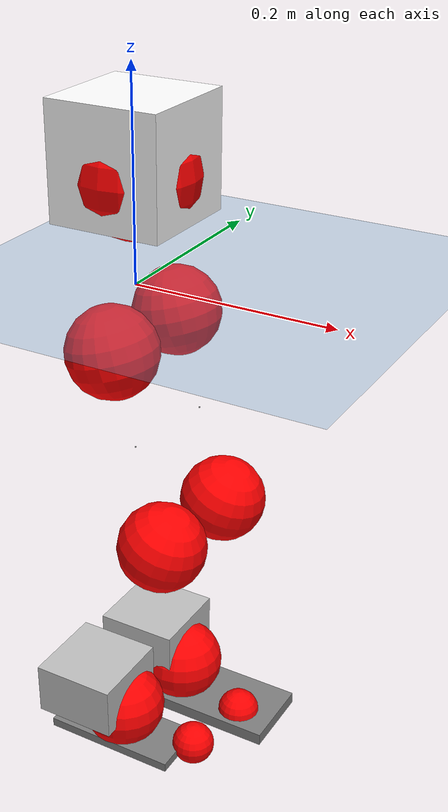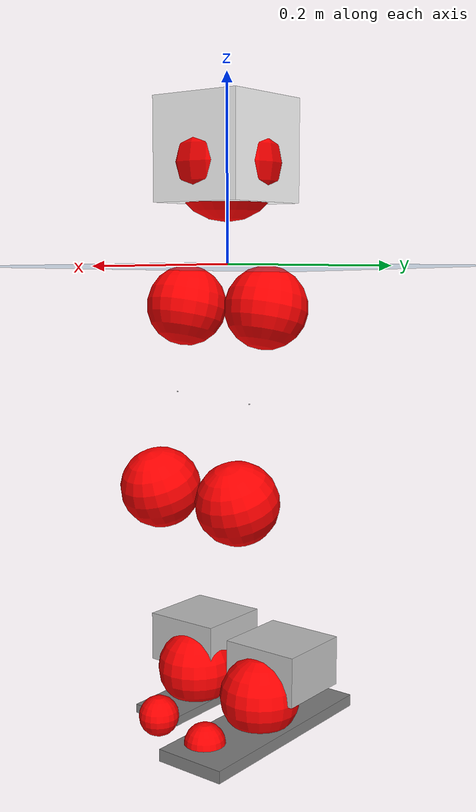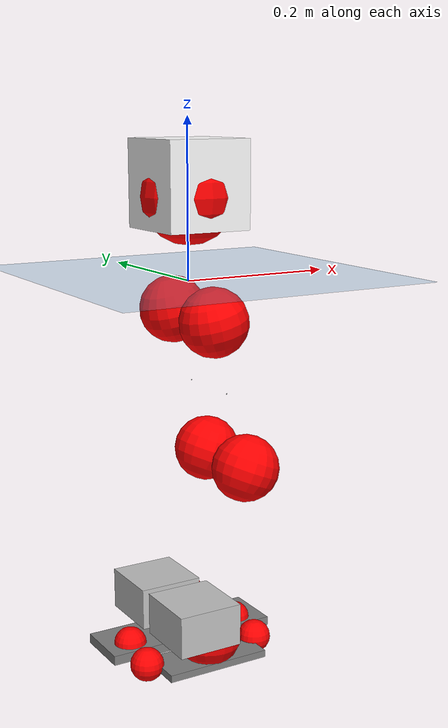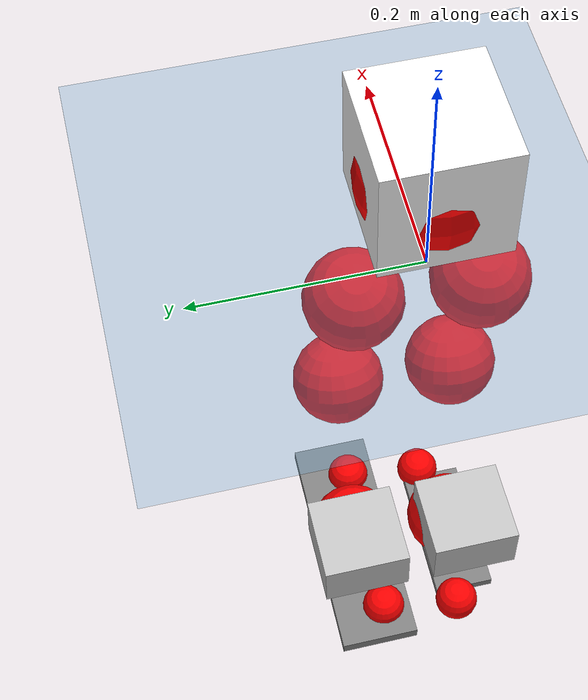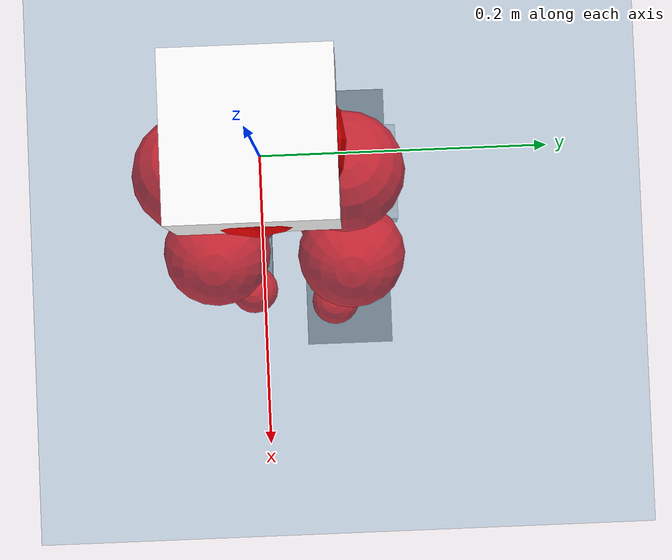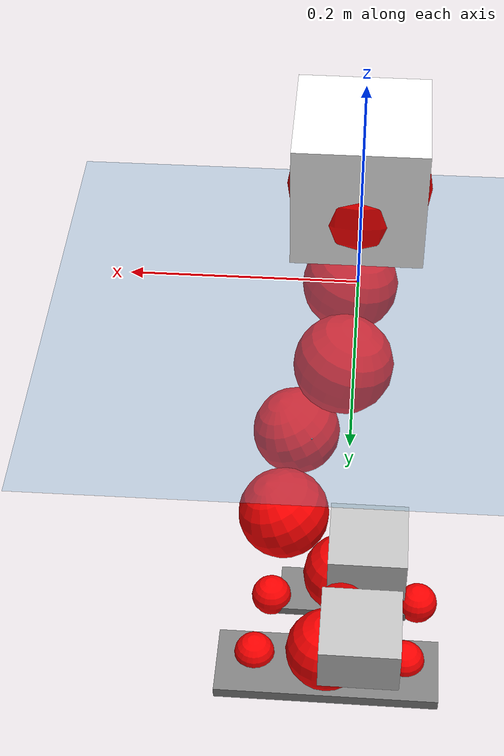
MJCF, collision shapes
<mujoco model="pi_12dof_release_v1">
  <compiler angle="radian" assetdir="assets" balanceinertia="true" inertiafromgeom="false"/>

  <option timestep="0.005" density="1.2" viscosity="2e-05"/>

  <size nkey="1"/>

  <visual>
    <quality shadowsize="8192"/>
    <map shadowclip="0.5"/>
  </visual>

  <default>
    <default class="/">
      <joint armature="0.01" damping="0.01" frictionloss="0.01"/>
      <geom contype="0" conaffinity="0" group="1" solref="-1000 -80"/>
      <site size="0.01 0.005 0.005" group="5"/>
      <general forcelimited="true" biastype="affine" gainprm="20" biasprm="0 -20 -0.5"/>
      <default class="foot">
        <geom size="0.0845 0.036 0.005" type="box" condim="6" group="4" priority="1" friction="0.9 0.2 0.2" solimp="0.015 1 0.005"/>
      </default>
      <default class="reward_collision_sphere">
        <geom group="5" rgba="1 0 0 1"/>
      </default>
    </default>
  </default>

  <asset>
    <texture type="skybox" colorspace="auto" name="//unnamed_texture_0" builtin="gradient" rgb1="0.95 0.95 0.95" rgb2="0.95 0.95 0.95" width="100" height="600"/>
    <texture type="2d" colorspace="auto" name="texplane" builtin="checker" rgb1="0.345 0.575 0.748" rgb2="0.345 0.575 0.748" markrgb="1 1 1" width="512" height="512"/>
    <material name="MatPlane" class="/" texture="texplane" texuniform="true" texrepeat="2 2" specular="0.9"/>
    <mesh name="baselink_1" class="/" file="baselink_1.STL"/>
    <mesh name="r_hip_pitch_link" class="/" file="r_hip_pitch_link.STL"/>
    <mesh name="r_hip_roll_link" class="/" file="r_hip_roll_link.STL"/>
    <mesh name="r_thigh_link" class="/" file="r_thigh_link.STL"/>
    <mesh name="r_calf_link" class="/" file="r_calf_link.STL"/>
    <mesh name="r_ankle_pitch_link" class="/" file="r_ankle_pitch_link.STL"/>
    <mesh name="r_ankle_roll_link" class="/" file="r_ankle_roll_link.STL"/>
    <mesh name="l_hip_pitch_link" class="/" file="l_hip_pitch_link.STL"/>
    <mesh name="l_hip_roll_link" class="/" file="l_hip_roll_link.STL"/>
    <mesh name="l_thigh_link" class="/" file="l_thigh_link.STL"/>
    <mesh name="l_calf_link" class="/" file="l_calf_link.STL"/>
    <mesh name="l_ankle_pitch_link" class="/" file="l_ankle_pitch_link.STL"/>
    <mesh name="l_ankle_roll_link" class="/" file="l_ankle_roll_link.STL"/>
  </asset>

  <worldbody>
    <geom name="floor" class="/" size="100 100 0.125" type="plane" group="0" material="MatPlane"/>
    <light name="toplight_shadow" class="/" pos="0 0 5" dir="0.0990148 0.0990148 -0.990148" type="directional" ambient="0.04 0.04 0.04" diffuse="0.55 0.55 0.55" specular="0.12 0.12 0.12"/>
    <light name="toplight_fill" class="/" pos="0 0 5" dir="0.0990148 0.0990148 -0.990148" type="directional" castshadow="false" ambient="0.04 0.04 0.04" diffuse="0.3 0.3 0.3" specular="0.08 0.08 0.08"/>
    <body name="trunk" pos="0.00201374 0.000739726 0.00194689" quat="0.999999 -0.000862104 -0.000585497 -0.000350132">
      <inertial pos="0.00593487 0.00423768 0.0597888" quat="0.69447 0.00309597 0.0117027 0.71942" mass="2.88224" diaginertia="0.0231886 0.000766031 0.0255744"/>
      <joint name="//unnamed_joint_0" type="free"/>
      <geom name="//unnamed_geom_1" class="/" type="mesh" density="0" rgba="1 1 1 1" mesh="baselink_1"/>
      <geom name="//unnamed_geom_2" class="/" size="0.0546985 0.0546985 0.0546985" pos="0 0 0.116995" type="box" rgba="1 1 1 1"/>
      <geom name="//unnamed_geom_3" class="reward_collision_sphere" size="0.0601683" pos="0 0 0.10237"/>
      <site name="imu" class="/" pos="0.0320942 -0.0116081 -0.0218165" size="0.0109397"/>
      <camera name="track" class="/" pos="0 -1.23692 0" quat="0.707107 0.707107 0 0" mode="trackcom"/>
      <camera name="ego_camera" class="/" pos="0.0900763 0 0.263238" quat="-0.5 -0.5 0.5 0.5"/>
      <body name="r_hip_pitch_link" pos="0.00285878 -0.0152286 -0.0486306" quat="0.992207 -3.04497e-05 -0.124601 -2.57795e-05">
        <inertial pos="-0.00344024 -0.0346195 -0.00145144" quat="-0.0189002 0.704798 -0.0323864 0.708416" mass="0.506465" diaginertia="0.000284855 8.73843e-06 0.000558436"/>
        <joint name="r_hip_pitch_joint" class="/" pos="0 0 0" axis="-0.0309506 -0.999402 -0.0154118" range="-1.75523 1.35533" armature="0.0106356" damping="0.0377727" frictionloss="0.0101693"/>
        <geom name="//unnamed_geom_4" class="/" type="mesh" density="0" rgba="0.75294 0.75294 0.75294 1" mesh="r_hip_pitch_link"/>
        <geom name="//unnamed_geom_5" class="/" size="0.000546985 0.000546985 0.000546985" type="box" rgba="0.75294 0.75294 0.75294 1"/>
        <body name="r_hip_roll_link" pos="0.00236015 -0.0367598 0.000722563" quat="1 0.000116044 -0.000120837 -4.29112e-05">
          <inertial pos="-0.000879358 -0.000171736 -0.0939392" quat="0.700066 -0.0828647 -0.0793077 0.704806" mass="0.51265" diaginertia="0.000905091 2.56127e-05 0.000851584"/>
          <joint name="r_hip_roll_joint" class="/" pos="0 0 0" axis="-0.999514 0.0250219 0.0185767" range="-0.0265767 0.519074" armature="0.010413" damping="0.000943742" frictionloss="0.00961493"/>
          <geom name="//unnamed_geom_6" class="/" type="mesh" density="0" rgba="0.75294 0.75294 0.75294 1" mesh="r_hip_roll_link"/>
          <geom name="//unnamed_geom_7" class="/" size="0.000546985 0.000546985 0.000546985" type="box" rgba="0.75294 0.75294 0.75294 1"/>
          <geom name="//unnamed_geom_8" class="reward_collision_sphere" size="0.0437588"/>
          <body name="r_thigh_link" pos="-0.00343325 0.0033462 -0.0949064" quat="0.999999 0.000962132 -0.000845372 -0.0011211">
            <inertial pos="-0.0011326 0.00181755 -0.0717684" quat="0.732321 0.680922 -0.00712903 -0.000819827" mass="0.146007" diaginertia="0.00031521 8.62813e-06 0.000378331"/>
            <joint name="r_thigh_joint" class="/" pos="0 0 0" axis="-0.004257 0.00367149 -0.999984" range="-0.276065 0.612287" armature="0.0101764" damping="0.00526234" frictionloss="0.0122277"/>
            <geom name="//unnamed_geom_9" class="/" type="mesh" density="0" rgba="0.75294 0.75294 0.75294 1" mesh="r_thigh_link"/>
            <geom name="//unnamed_geom_10" class="/" size="0.000546985 0.000546985 0.000546985" type="box" rgba="0.75294 0.75294 0.75294 1"/>
            <body name="r_calf_link" pos="0.00160819 -0.000838127 -0.104988" quat="0.947767 0.000588965 0.318961 0.000522895">
              <inertial pos="-0.00468487 -0.00113881 -0.1008" quat="0.999983 -0.00266391 0.000717877 0.00507952" mass="1.02249" diaginertia="0.00860883 0.000309693 0.00114527"/>
              <joint name="r_calf_joint" class="/" pos="0 0 0" axis="0.00845908 -0.999898 -0.0115227" stiffness="0.000853925" range="-1.69206 0.639542" armature="0.0118715" damping="0" frictionloss="0.0108786"/>
              <geom name="//unnamed_geom_11" class="/" type="mesh" density="0" rgba="0.75294 0.75294 0.75294 1" mesh="r_calf_link"/>
              <geom name="//unnamed_geom_12" class="/" size="0.000546985 0.000546985 0.000546985" type="box" rgba="0.75294 0.75294 0.75294 1"/>
              <geom name="//unnamed_geom_13" class="reward_collision_sphere" size="0.0437588"/>
              <body name="r_ankle_pitch_link" pos="0.000178077 -0.00514674 -0.204924" quat="0.980147 0.000107785 -0.198273 -0.00017232">
                <inertial pos="0.00605296 0.00461524 -0.00223425" quat="0.0119468 0.705004 -0.0198193 0.708825" mass="0.25434" diaginertia="0.000815807 2.04293e-05 0.000832747"/>
                <joint name="r_ankle_pitch_joint" class="/" pos="0 0 0" axis="0.0103363 -0.99992 -0.00727342" stiffness="0.00887614" range="-1.344 0.55103" armature="0.00958853" damping="0.0264158" frictionloss="0.0110244"/>
                <geom name="//unnamed_geom_14" class="/" type="mesh" density="0" rgba="0.75294 0.75294 0.75294 1" mesh="r_ankle_pitch_link"/>
                <geom name="//unnamed_geom_15" class="/" size="0.0426648 0.0437588 0.0273492" type="box" rgba="0.75294 0.75294 0.75294 1"/>
                <body name="r_ankle_roll_link" pos="0.0861426 0.00890673 0.000200134" quat="1 0.000591716 -0.00028223 -0.000361289">
                  <inertial pos="-0.0278939 -0.00051871 -0.0263313" quat="0.557204 0.430338 0.435899 0.560647" mass="0.663762" diaginertia="0.00306621 9.7756e-05 0.00194449"/>
                  <joint name="r_ankle_roll_joint" class="/" pos="0 0 0" axis="-0.999933 -0.000519955 0.0115307" stiffness="0.00806357" range="-0.120696 0.173923" armature="0.0118461" damping="0.0270016" frictionloss="0.00874182"/>
                  <geom name="//unnamed_geom_16" class="/" type="mesh" density="0" rgba="0.75294 0.75294 0.75294 1" mesh="r_ankle_roll_link"/>
                  <geom name="//unnamed_geom_17" class="/" type="mesh" rgba="0.75294 0.75294 0.75294 1" mesh="r_ankle_roll_link"/>
                  <geom name="right_foot" class="foot" size="0.0701905 0.0298638 0.00477271" pos="-0.0612519 0 -0.064347"/>
                  <geom name="//unnamed_geom_19" class="reward_collision_sphere" size="0.0437588" pos="-0.0600509 0 -0.0292486"/>
                  <geom name="//unnamed_geom_20" class="reward_collision_sphere" size="0.0218794" pos="0.0180153 0.0123692 -0.0584973"/>
                  <geom name="//unnamed_geom_21" class="reward_collision_sphere" size="0.0218794" pos="-0.144122 0.0123692 -0.0584973"/>
                  <site name="right_foot" class="foot" pos="-0.0612519 0 -0.064347" size="0.0109397"/>
                </body>
              </body>
            </body>
          </body>
        </body>
      </body>
      <body name="l_hip_pitch_link" pos="0.00587679 0.015471 -0.0463401" quat="0.992221 -0.000637761 -0.124484 0.000211162">
        <inertial pos="0.00169643 0.02868 0.000662481" quat="-0.0433566 0.706159 0.0310978 0.70604" mass="0.517635" diaginertia="0.000330322 9.22795e-06 0.00074483"/>
        <joint name="l_hip_pitch_joint" class="/" pos="0 0 0" axis="0.0142154 0.999894 0.00322366" range="-1.15375 1.81104" armature="0.00784099" damping="0.0363849" frictionloss="0.00965902"/>
        <geom name="//unnamed_geom_22" class="/" type="mesh" density="0" rgba="0.75294 0.75294 0.75294 1" mesh="l_hip_pitch_link"/>
        <geom name="//unnamed_geom_23" class="/" size="0.000546985 0.000546985 0.000546985" type="box" rgba="0.75294 0.75294 0.75294 1"/>
        <body name="l_hip_roll_link" pos="0.00110683 0.0422368 -0.000198885" quat="1 4.06367e-08 -3.50741e-05 -1.22264e-05">
          <inertial pos="-0.00228934 -0.00310863 -0.0920835" quat="0.695783 -0.0674958 -0.0775082 0.710861" mass="0.509687" diaginertia="0.000838797 2.55399e-05 0.000882513"/>
          <joint name="l_hip_roll_joint" class="/" pos="0 0 0" axis="-0.999532 0.0222187 -0.0210115" stiffness="0.00851147" range="-0.625083 0.0859418" armature="0.0120414" damping="0" frictionloss="0.0133247"/>
          <geom name="//unnamed_geom_24" class="/" type="mesh" density="0" rgba="0.75294 0.75294 0.75294 1" mesh="l_hip_roll_link"/>
          <geom name="//unnamed_geom_25" class="/" size="0.000546985 0.000546985 0.000546985" type="box" rgba="0.75294 0.75294 0.75294 1"/>
          <geom name="//unnamed_geom_26" class="reward_collision_sphere" size="0.0437588"/>
          <body name="l_thigh_link" pos="0.00121191 -0.00166749 -0.101137" quat="1 -0.000209845 0.000406049 -0.000150253">
            <inertial pos="0.000106626 -0.0018106 -0.0717209" quat="0.684484 0.728243 0.00243058 0.0337482" mass="0.146155" diaginertia="0.000317059 8.75466e-06 0.000416453"/>
            <joint name="l_thigh_joint" class="/" pos="0 0 0" axis="0.00195795 -0.00547948 -0.999983" range="-0.585093 0.271706" armature="0.0109652" damping="0.0256323" frictionloss="0.0102556"/>
            <geom name="//unnamed_geom_27" class="/" type="mesh" density="0" rgba="0.75294 0.75294 0.75294 1" mesh="l_thigh_link"/>
            <geom name="//unnamed_geom_28" class="/" size="0.000546985 0.000546985 0.000546985" type="box" rgba="0.75294 0.75294 0.75294 1"/>
            <body name="l_calf_link" pos="0.000161217 0.00465213 -0.102385" quat="0.948016 0.000130013 0.31822 -0.000966386">
              <inertial pos="0.00537574 0.00115854 -0.106154" quat="0.999916 0.0107167 -0.00617198 0.00395642" mass="1.06706" diaginertia="0.0087479 0.000316064 0.00125297"/>
              <joint name="l_calf_joint" class="/" pos="0 0 0" axis="0.00162727 0.999999 0.000139593" range="-0.627663 1.79782" armature="0.0131673" damping="0.0122998" frictionloss="0.0133922"/>
              <geom name="//unnamed_geom_29" class="/" type="mesh" density="0" rgba="0.75294 0.75294 0.75294 1" mesh="l_calf_link"/>
              <geom name="//unnamed_geom_30" class="/" size="0.000546985 0.000546985 0.000546985" type="box" rgba="0.75294 0.75294 0.75294 1"/>
              <geom name="//unnamed_geom_31" class="reward_collision_sphere" size="0.0437588"/>
              <body name="l_ankle_pitch_link" pos="0.00125364 -0.000620492 -0.209979" quat="0.979917 -0.000405435 -0.199407 -6.52841e-05">
                <inertial pos="0.00358172 -0.00311848 0.00188021" quat="-0.00135909 0.707208 0.00264755 0.707" mass="0.269075" diaginertia="0.000876535 2.21001e-05 0.00089553"/>
                <joint name="l_ankle_pitch_joint" class="/" pos="0 0 0" axis="0.00270867 0.999907 0.0133938" stiffness="0.000286843" range="-0.52438 1.27233" armature="0.0106572" damping="0.0175971" frictionloss="0.00689775"/>
                <geom name="//unnamed_geom_32" class="/" type="mesh" density="0" rgba="0.75294 0.75294 0.75294 1" mesh="l_ankle_pitch_link"/>
                <geom name="//unnamed_geom_33" class="/" size="0.0426648 0.0437588 0.0273492" type="box" rgba="0.75294 0.75294 0.75294 1"/>
                <body name="l_ankle_roll_link" pos="0.0949313 -0.00348791 0.00161047" quat="1 -4.61377e-06 -1.21437e-05 2.21456e-07">
                  <inertial pos="-0.0300646 2.4894e-05 -0.0201074" quat="0.558593 0.445918 0.434184 0.548284" mass="0.714453" diaginertia="0.00291389 9.12987e-05 0.00196761"/>
                  <joint name="l_ankle_roll_joint" class="/" pos="0 0 0" axis="-0.999938 0.00468391 -0.0101123" stiffness="0.0062531" range="-0.140972 0.14988" armature="0.0100535" damping="0.0153324" frictionloss="0.0141247"/>
                  <geom name="//unnamed_geom_34" class="/" type="mesh" density="0" rgba="0.75294 0.75294 0.75294 1" mesh="l_ankle_roll_link"/>
                  <geom name="//unnamed_geom_35" class="/" type="mesh" rgba="0.75294 0.75294 0.75294 1" mesh="l_ankle_roll_link"/>
                  <geom name="left_foot" class="foot" size="0.119405 0.0394308 0.00650536" pos="-0.0612519 0 -0.064347"/>
                  <geom name="//unnamed_geom_37" class="reward_collision_sphere" size="0.0437588" pos="-0.0600509 0 -0.0292486"/>
                  <geom name="//unnamed_geom_38" class="reward_collision_sphere" size="0.0218794" pos="0.0180153 -0.0123692 -0.0584973"/>
                  <geom name="//unnamed_geom_39" class="reward_collision_sphere" size="0.0218794" pos="-0.144122 -0.0123692 -0.0584973"/>
                  <site name="left_foot" class="foot" pos="-0.0612519 0 -0.064347" size="0.0109397"/>
                </body>
              </body>
            </body>
          </body>
        </body>
      </body>
    </body>
  </worldbody>

  <contact>
    <pair class="/" geom1="floor" geom2="right_foot" name="//unnamed_contact_1"/>
    <pair class="/" geom1="floor" geom2="left_foot" name="//unnamed_contact_0"/>
  </contact>

  <actuator>
    <general name="r_hip_pitch_joint" class="/" joint="r_hip_pitch_joint" forcerange="-24.1805 24.1805" gainprm="20.893" biasprm="0 -20.893 -0.491685"/>
    <general name="r_hip_roll_joint" class="/" joint="r_hip_roll_joint" forcerange="-26.1497 26.1497" gainprm="20.893" biasprm="0 -20.893 -0.491685"/>
    <general name="r_thigh_joint" class="/" joint="r_thigh_joint" forcerange="-20.7842 20.7842" gainprm="20.893" biasprm="0 -20.893 -0.491685"/>
    <general name="r_calf_joint" class="/" joint="r_calf_joint" forcerange="-22.4234 22.4234" gainprm="20.893" biasprm="0 -20.893 -0.491685"/>
    <general name="r_ankle_pitch_joint" class="/" joint="r_ankle_pitch_joint" forcerange="-25.9202 25.9202" gainprm="20.893" biasprm="0 -20.893 -0.491685"/>
    <general name="r_ankle_roll_joint" class="/" joint="r_ankle_roll_joint" forcerange="-23.5311 23.5311" gainprm="20.893" biasprm="0 -20.893 -0.491685"/>
    <general name="l_hip_pitch_joint" class="/" joint="l_hip_pitch_joint" forcerange="-21.17 21.17" gainprm="20.893" biasprm="0 -20.893 -0.491685"/>
    <general name="l_hip_roll_joint" class="/" joint="l_hip_roll_joint" forcerange="-23.5506 23.5506" gainprm="20.893" biasprm="0 -20.893 -0.491685"/>
    <general name="l_thigh_joint" class="/" joint="l_thigh_joint" forcerange="-21.2451 21.2451" gainprm="20.893" biasprm="0 -20.893 -0.491685"/>
    <general name="l_calf_joint" class="/" joint="l_calf_joint" forcerange="-23.9524 23.9524" gainprm="20.893" biasprm="0 -20.893 -0.491685"/>
    <general name="l_ankle_pitch_joint" class="/" joint="l_ankle_pitch_joint" forcerange="-23.3093 23.3093" gainprm="20.893" biasprm="0 -20.893 -0.491685"/>
    <general name="l_ankle_roll_joint" class="/" joint="l_ankle_roll_joint" forcerange="-26.564 26.564" gainprm="20.893" biasprm="0 -20.893 -0.491685"/>
  </actuator>

  <sensor>
    <gyro site="imu" name="imu_angular_velocity"/>
    <velocimeter site="imu" name="imu_linear_velocity"/>
    <framelinvel objtype="site" objname="left_foot" name="left_foot_global_linear_velocity"/>
    <framelinvel objtype="site" objname="right_foot" name="right_foot_global_linear_velocity"/>
  </sensor>

  <keyframe>
    <key name="home" qpos="0 0 0.291 1 0 0 0 0.4 0 0 -0.8 0.4 0 -0.4 0 0 0.8 -0.4 0"/>
  </keyframe>
</mujoco>
